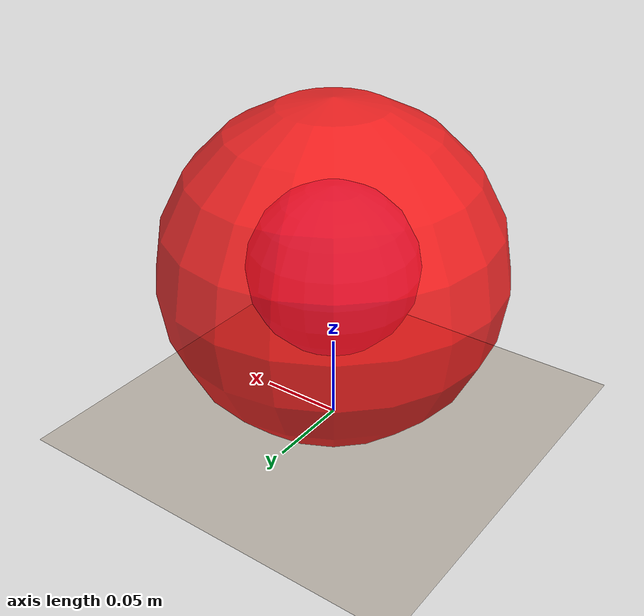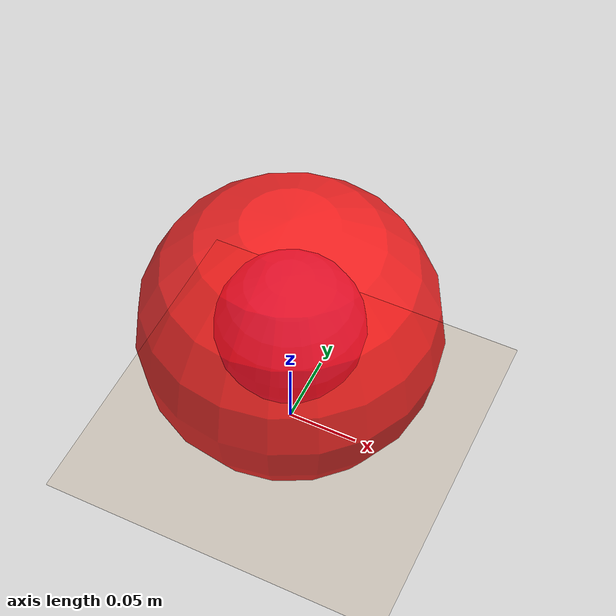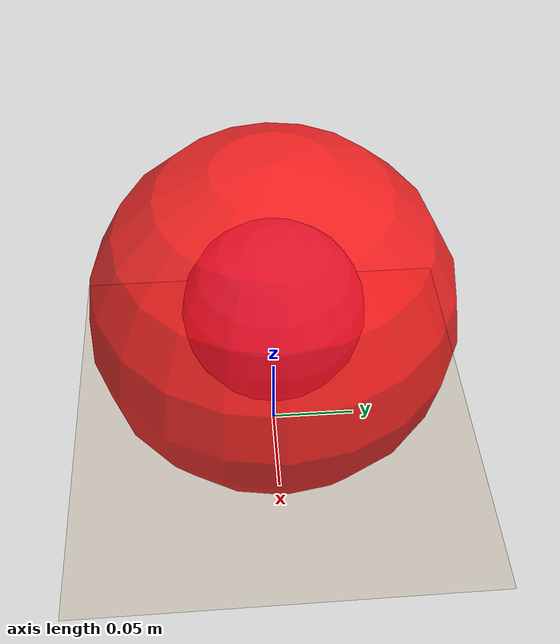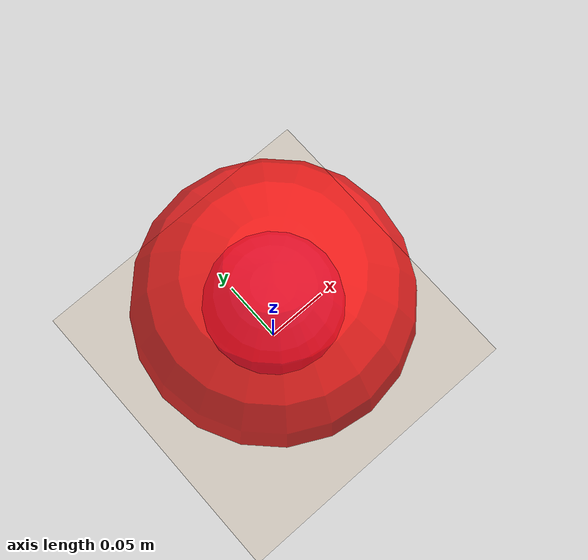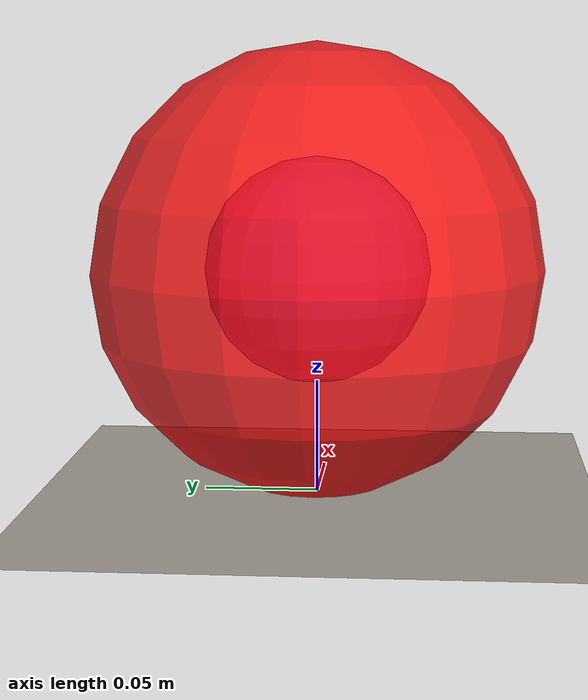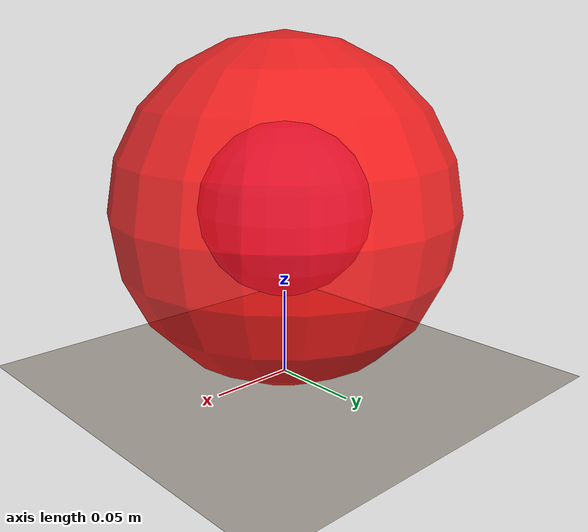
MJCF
<mujoco model="point_mass">
    <compiler inertiafromgeom="true" />
    <option gravity="0 0 0" timestep="0.01" />
    <default>
        <joint armature="0" damping="0.1" />
        <geom contype="0" conaffinity="0" friction="1 0.1 0.1" />
        <motor ctrlrange="-1 1" gear="10" />
    </default>
    <asset>
        <texture name="skybox" type="skybox" builtin="gradient" rgb1="0.4 0.4 0.4" rgb2="0 0 0"
            width="512"
            height="512" />
        <texture name="motphys-ground" type="2d" file="../../common/motphys-ground.png" />
        <material name="motphys-ground" texture="motphys-ground" texuniform="true"
            texrepeat="0.4 0.4" />
    </asset>

    <worldbody>
        <light pos="0 0 1.5" dir="0 0 -1" directional="true" />
        <geom name="floor" size="0 0 0.01" type="plane" material="motphys-ground" pos="0 0 0" />
    </worldbody>

    <worldbody>
        <!-- Point mass -->
        <body name="point_mass" pos="0 0 0.1">
            <joint name="point_mass_x" type="slide" axis="1 0 0" />
            <joint name="point_mass_y" type="slide" axis="0 1 0" />
            <geom name="mass" type="sphere" size="0.05" rgba="0.5 0.5 1 1" mass="1" />
        </body>

        <!-- Target -->
        <body name="target" pos="0 0 0.1" mocap="true">
            <joint name="target_x" type="slide" axis="1 0 0" />
            <joint name="target_y" type="slide" axis="0 1 0" />
            <geom name="target_geom" type="sphere" size="0.1" rgba="1 0 0 0.8" contype="0" conaffinity="0" />
        </body>
    </worldbody>

    <actuator>
        <motor name="x_force" joint="point_mass_x" />
        <motor name="y_force" joint="point_mass_y" />
    </actuator>
</mujoco>
